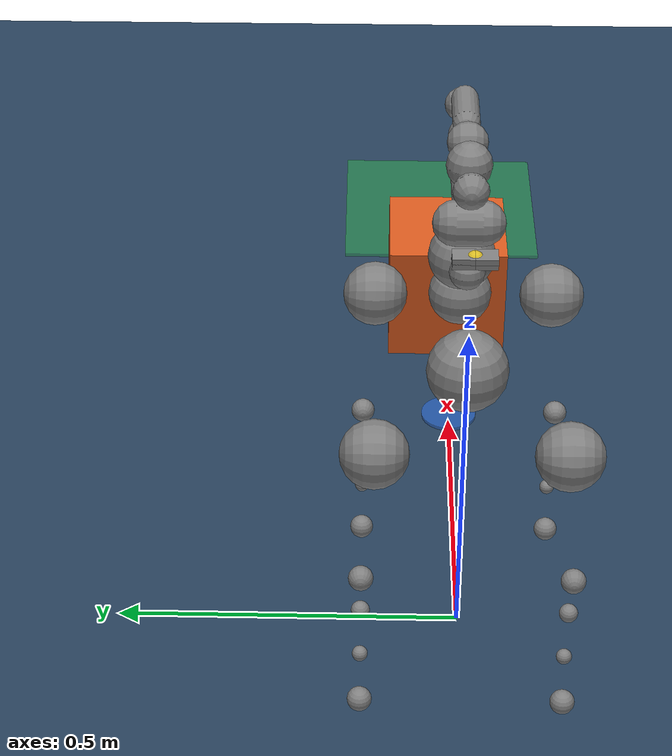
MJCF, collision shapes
<?xml version='1.0' encoding='utf-8'?>
<mujoco model="go2_z1 push scene">
  <include file="go2_z1.xml" />
  <option iterations="8" />
  <visual>
    <headlight diffuse="0.6 0.6 0.6" ambient="0.3 0.3 0.3" specular="0 0 0" />
    <rgba haze="0.15 0.25 0.35 1" />
    <global azimuth="-130" elevation="-20" />
  </visual>
  <asset>
    <texture type="skybox" builtin="gradient" rgb1="0.3 0.5 0.7" rgb2="0 0 0" width="512" height="3072" />
    <texture type="2d" name="groundplane" builtin="checker" mark="edge" rgb1="0.2 0.3 0.4" rgb2="0.1 0.2 0.3" markrgb="0.8 0.8 0.8" width="300" height="300" />
    <material name="groundplane" texture="groundplane" texuniform="true" texrepeat="5 5" reflectance="0.2" />
  </asset>
  <worldbody>
    <light pos="0 0 1.5" dir="0 0 -1" directional="true" />
    <geom name="floor" size="0 0 0.05" type="plane" material="groundplane" />
    <body name="push_box_body" pos="0.8 0.0 0.1">
      <freejoint name="push_box_joint" />
      <geom name="push_box" type="box" size="0.1 0.1 0.1" mass="2" friction="0.8 0.02 0.001" condim="3" rgba="0.85 0.35 0.12 1" />
      <site name="push_contact_site" type="sphere" pos="-0.105 0.0 0.0" size="0.012" rgba="1 0.85 0.1 0.8" group="1" />
      <site name="prepush_site" type="cylinder" pos="-0.3 0.0 -0.085" size="0.045 0.003" rgba="0.15 0.45 1 0.45" />
    </body>
    <site name="goal_site" type="box" pos="1.2 0.0 0.005" size="0.18 0.18 0.003" rgba="0.15 0.85 0.25 0.35" />
  </worldbody>
  <keyframe>
    <key name="push_home" qpos="0 0 0.27 1 0 0 0 0 0.9 -1.8 0 0.9 -1.8 0 0.9 -1.8 0 0.9 -1.8 0 0.785 -0.261 -0.523 0 0 0 0.8 0.0 0.1 1 0 0 0" ctrl="0 0.9 -1.8 0 0.9 -1.8 0 0.9 -1.8 0 0.9 -1.8 0 0.785 -0.261 -0.523 0 0 0" />
  </keyframe>
</mujoco>

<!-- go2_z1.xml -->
<mujoco model="go2_z1">
  <compiler angle="radian" meshdir="." autolimits="true" />
  <option cone="pyramidal" impratio="100" iterations="1" ls_iterations="5" integrator="implicitfast">
    </option>
  <default>
    <default class="go2">
      <geom friction="0.6" margin="0.001" condim="1" />
      <joint axis="0 1 0" damping="2" armature="0.01" />
      <general forcerange="-24 24" biastype="affine" gainprm="50 0 0" biasprm="0 -50 -0.5" />
      <default class="abduction">
        <joint axis="1 0 0" range="-1.0472 1.0472" />
        <general ctrlrange="-0.9472 0.9472" />
      </default>
      <default class="hip">
        <joint range="-1.5708 3.4907" />
        <general ctrlrange="-1.4 2.5" />
      </default>
      <default class="knee">
        <joint range="-2.7227 -0.83776" />
        <general ctrlrange="-2.6227 -0.84776" />
      </default>
      <default class="visual">
        <geom type="mesh" contype="0" conaffinity="0" group="2" />
      </default>
      <default class="go2foot">
        <site group="1" pos="-0.002 0 -0.213" />
        <geom rgba="0.231373 0.380392 0.705882 1" />
      </default>
      <default class="collision">
        <geom group="3" />
        <default class="foot">
          <geom size="0.0175" pos="-0.002 0 -0.213" priority="1" solimp="0.015 1 0.031" condim="6" friction="0.8 0.02 0.01" />
        </default>
      </default>
    </default>
    <default class="z1">
      <joint damping="1" frictionloss="1" />
      <general biastype="affine" gainprm="1000" biasprm="0 -1000 -100" forcerange="-30 30" />
      <default class="z1_visual">
        <geom type="mesh" group="2" contype="0" conaffinity="0" />
      </default>
      <default class="z1_collision">
        <geom type="capsule" group="3" mass="0" density="0" />
        <default class="z1_gripper_stator_collision">
          <geom pos="0.051 0 0" type="mesh" />
        </default>
        <default class="z1_gripper_stator_pad_collision_1">
          <geom type="box" size="0.014 0.015 0.004" pos="0.186 -0.015 -0.0125" />
        </default>
        <default class="z1_gripper_stator_pad_collision_2">
          <geom type="box" size="0.014 0.015 0.004" pos="0.186 0.015 -0.0125" />
        </default>
        <default class="z1_gripper_mover_collision">
          <geom type="mesh" />
        </default>
        <default class="z1_gripper_mover_pad_collision_1">
          <geom type="box" size="0.014 0.015 0.004" pos="0.086 -0.015 -0.0055" />
        </default>
        <default class="z1_gripper_mover_pad_collision_2">
          <geom type="box" size="0.014 0.015 0.004" pos="0.086 0.015 -0.0055" />
        </default>
      </default>
    </default>
  </default>
  <asset>
    <material name="metal" rgba=".9 .95 .95 1" />
    <material name="black" rgba="0 0 0 1" />
    <material name="white" rgba="1 1 1 1" />
    <material name="gray" rgba="0.671705 0.692426 0.774270 1" />
    <mesh file="../unitree_go2/assets/base_0.obj" />
    <mesh file="../unitree_go2/assets/base_1.obj" />
    <mesh file="../unitree_go2/assets/base_2.obj" />
    <mesh file="../unitree_go2/assets/base_3.obj" />
    <mesh file="../unitree_go2/assets/base_4.obj" />
    <mesh file="../unitree_go2/assets/hip_0.obj" />
    <mesh file="../unitree_go2/assets/hip_1.obj" />
    <mesh file="../unitree_go2/assets/thigh_0.obj" />
    <mesh file="../unitree_go2/assets/thigh_1.obj" />
    <mesh file="../unitree_go2/assets/thigh_mirror_0.obj" />
    <mesh file="../unitree_go2/assets/thigh_mirror_1.obj" />
    <mesh file="../unitree_go2/assets/calf_0.obj" />
    <mesh file="../unitree_go2/assets/calf_1.obj" />
    <mesh file="../unitree_go2/assets/calf_mirror_0.obj" />
    <mesh file="../unitree_go2/assets/calf_mirror_1.obj" />
    <mesh file="../unitree_go2/assets/foot.obj" />
    <mesh file="../unitree_z1/assets/z1_Link00.stl" />
    <mesh file="../unitree_z1/assets/z1_Link01.stl" />
    <mesh file="../unitree_z1/assets/z1_Link02.stl" />
    <mesh file="../unitree_z1/assets/z1_Link03.stl" />
    <mesh file="../unitree_z1/assets/z1_Link04.stl" />
    <mesh file="../unitree_z1/assets/z1_Link05.stl" />
    <mesh file="../unitree_z1/assets/z1_Link06.stl" />
    <mesh file="../unitree_z1/assets/z1_GripperStator.stl" />
    <mesh file="../unitree_z1/assets/z1_GripperStator_col_1.stl" />
    <mesh file="../unitree_z1/assets/z1_GripperStator_col_2.stl" />
    <mesh file="../unitree_z1/assets/z1_GripperStator_col_3.stl" />
    <mesh file="../unitree_z1/assets/z1_GripperStator_col_4.stl" />
    <mesh file="../unitree_z1/assets/z1_GripperStator_col_5.stl" />
    <mesh file="../unitree_z1/assets/z1_GripperStator_col_6.stl" />
    <mesh file="../unitree_z1/assets/z1_GripperMover.stl" />
    <mesh file="../unitree_z1/assets/z1_GripperMover_col_1.stl" />
    <mesh file="../unitree_z1/assets/z1_GripperMover_col_2.stl" />
    <mesh file="../unitree_z1/assets/z1_GripperMover_col_3.stl" />
    <mesh file="../unitree_z1/assets/z1_GripperMover_col_4.stl" />
    <mesh file="../unitree_z1/assets/z1_GripperMover_col_5.stl" />
  </asset>
  <worldbody>
    <body name="base" pos="0 0 0.445" childclass="go2">
      <camera name="track" pos="0.846 -1.465 0.916" xyaxes="0.866 0.500 0.000 -0.171 0.296 0.940" mode="trackcom" />
      <inertial pos="0.021112 0 -0.005366" quat="-0.000543471 0.713435 -0.00173769 0.700719" mass="6.921" diaginertia="0.107027 0.0980771 0.0244531" />
      <freejoint />
      <geom mesh="base_0" material="black" class="visual" />
      <geom mesh="base_1" material="black" class="visual" />
      <geom mesh="base_2" material="black" class="visual" />
      <geom mesh="base_3" material="white" class="visual" />
      <geom mesh="base_4" material="gray" class="visual" />
      <geom size="0.057 0.04675 0.057" class="collision" />
      <geom size="0.05 0.045" pos="0.285 0 0.01" class="collision" />
      <geom size="0.047" pos="0.293 0 -0.06" class="collision" />
      <site name="imu" pos="-0.02557 0 0.04232" />
      <body name="FL_hip" pos="0.1934 0.0465 0">
        <inertial pos="-0.0054 0.00194 -0.000105" quat="0.497014 0.499245 0.505462 0.498237" mass="0.678" diaginertia="0.00088403 0.000596003 0.000479967" />
        <joint name="FL_hip_joint" class="abduction" />
        <geom mesh="hip_0" material="metal" class="visual" />
        <geom mesh="hip_1" material="gray" class="visual" />
        <geom size="0.046 0.02" pos="0 0.08 0" quat="1 1 0 0" class="collision" />
        <body name="FL_thigh" pos="0 0.0955 0">
          <inertial pos="-0.00374 -0.0223 -0.0327" quat="0.829533 0.0847635 -0.0200632 0.551623" mass="1.152" diaginertia="0.00594973 0.00584149 0.000878787" />
          <joint name="FL_thigh_joint" class="hip" />
          <geom mesh="thigh_0" material="metal" class="visual" />
          <geom mesh="thigh_1" material="gray" class="visual" />
          <geom size="0.017 0.01225 0.017" pos="-0.015 0 -0.1955" quat="0.707107 0 0.707107 0" class="collision" />
          <body name="FL_calf" pos="0 0 -0.213">
            <inertial pos="0.00629595 -0.000622121 -0.141417" quat="0.710672 0.00154099 -0.00450087 0.703508" mass="0.241352" diaginertia="0.0014901 0.00146356 5.31397e-05" />
            <joint name="FL_calf_joint" class="knee" />
            <geom mesh="calf_0" material="gray" class="visual" />
            <geom mesh="calf_1" material="black" class="visual" />
            <geom size="0.012 0.06" pos="0.008 0 -0.06" quat="0.994493 0 -0.104807 0" class="collision" />
            <geom size="0.011 0.0325" pos="0.02 0 -0.148" quat="0.999688 0 0.0249974 0" class="collision" />
            <geom pos="0 0 -0.213" mesh="foot" class="visual" material="black" />
            <geom name="FL" class="foot" />
            <site name="FL_foot" class="go2foot" />
          </body>
        </body>
      </body>
      <body name="FR_hip" pos="0.1934 -0.0465 0">
        <inertial pos="-0.0054 -0.00194 -0.000105" quat="0.498237 0.505462 0.499245 0.497014" mass="0.678" diaginertia="0.00088403 0.000596003 0.000479967" />
        <joint name="FR_hip_joint" class="abduction" />
        <geom mesh="hip_0" material="metal" class="visual" quat="4.63268e-05 1 0 0" />
        <geom mesh="hip_1" material="gray" class="visual" quat="4.63268e-05 1 0 0" />
        <geom size="0.046 0.02" pos="0 -0.08 0" quat="0.707107 0.707107 0 0" class="collision" />
        <body name="FR_thigh" pos="0 -0.0955 0">
          <inertial pos="-0.00374 0.0223 -0.0327" quat="0.551623 -0.0200632 0.0847635 0.829533" mass="1.152" diaginertia="0.00594973 0.00584149 0.000878787" />
          <joint name="FR_thigh_joint" class="hip" />
          <geom mesh="thigh_mirror_0" material="metal" class="visual" />
          <geom mesh="thigh_mirror_1" material="gray" class="visual" />
          <geom size="0.017 0.01225 0.017" pos="-0.015 0 -0.1955" quat="0.707107 0 0.707107 0" class="collision" />
          <body name="FR_calf" pos="0 0 -0.213">
            <inertial pos="0.00629595 0.000622121 -0.141417" quat="0.703508 -0.00450087 0.00154099 0.710672" mass="0.241352" diaginertia="0.0014901 0.00146356 5.31397e-05" />
            <joint name="FR_calf_joint" class="knee" />
            <geom mesh="calf_mirror_0" material="gray" class="visual" />
            <geom mesh="calf_mirror_1" material="black" class="visual" />
            <geom size="0.013 0.06" pos="0.01 0 -0.06" quat="0.995004 0 -0.0998334 0" class="collision" />
            <geom size="0.011 0.0325" pos="0.02 0 -0.148" quat="0.999688 0 0.0249974 0" class="collision" />
            <geom pos="0 0 -0.213" mesh="foot" class="visual" material="black" />
            <geom name="FR" class="foot" />
            <site name="FR_foot" class="go2foot" />
          </body>
        </body>
      </body>
      <body name="RL_hip" pos="-0.1934 0.0465 0">
        <inertial pos="0.0054 0.00194 -0.000105" quat="0.505462 0.498237 0.497014 0.499245" mass="0.678" diaginertia="0.00088403 0.000596003 0.000479967" />
        <joint name="RL_hip_joint" class="abduction" />
        <geom mesh="hip_0" material="metal" class="visual" quat="4.63268e-05 0 1 0" />
        <geom mesh="hip_1" material="gray" class="visual" quat="4.63268e-05 0 1 0" />
        <geom size="0.046 0.02" pos="0 0.08 0" quat="0.707107 0.707107 0 0" class="collision" />
        <body name="RL_thigh" pos="0 0.0955 0">
          <inertial pos="-0.00374 -0.0223 -0.0327" quat="0.829533 0.0847635 -0.0200632 0.551623" mass="1.152" diaginertia="0.00594973 0.00584149 0.000878787" />
          <joint name="RL_thigh_joint" class="hip" />
          <geom mesh="thigh_0" material="metal" class="visual" />
          <geom mesh="thigh_1" material="gray" class="visual" />
          <geom size="0.017 0.01225 0.017" pos="-0.015 0 -0.1955" quat="0.707107 0 0.707107 0" class="collision" />
          <body name="RL_calf" pos="0 0 -0.213">
            <inertial pos="0.00629595 -0.000622121 -0.141417" quat="0.710672 0.00154099 -0.00450087 0.703508" mass="0.241352" diaginertia="0.0014901 0.00146356 5.31397e-05" />
            <joint name="RL_calf_joint" class="knee" />
            <geom mesh="calf_0" material="gray" class="visual" />
            <geom mesh="calf_1" material="black" class="visual" />
            <geom size="0.013 0.06" pos="0.01 0 -0.06" quat="0.995004 0 -0.0998334 0" class="collision" />
            <geom size="0.011 0.0325" pos="0.02 0 -0.148" quat="0.999688 0 0.0249974 0" class="collision" />
            <geom pos="0 0 -0.213" mesh="foot" class="visual" material="black" />
            <geom name="RL" class="foot" />
            <site name="RL_foot" class="go2foot" />
          </body>
        </body>
      </body>
      <body name="RR_hip" pos="-0.1934 -0.0465 0">
        <inertial pos="0.0054 -0.00194 -0.000105" quat="0.499245 0.497014 0.498237 0.505462" mass="0.678" diaginertia="0.00088403 0.000596003 0.000479967" />
        <joint name="RR_hip_joint" class="abduction" />
        <geom mesh="hip_0" material="metal" class="visual" quat="2.14617e-09 4.63268e-05 4.63268e-05 -1" />
        <geom mesh="hip_1" material="gray" class="visual" quat="2.14617e-09 4.63268e-05 4.63268e-05 -1" />
        <geom size="0.046 0.02" pos="0 -0.08 0" quat="0.707107 0.707107 0 0" class="collision" />
        <body name="RR_thigh" pos="0 -0.0955 0">
          <inertial pos="-0.00374 0.0223 -0.0327" quat="0.551623 -0.0200632 0.0847635 0.829533" mass="1.152" diaginertia="0.00594973 0.00584149 0.000878787" />
          <joint name="RR_thigh_joint" class="hip" />
          <geom mesh="thigh_mirror_0" material="metal" class="visual" />
          <geom mesh="thigh_mirror_1" material="gray" class="visual" />
          <geom size="0.017 0.01225 0.017" pos="-0.015 0 -0.1955" quat="0.707107 0 0.707107 0" class="collision" />
          <body name="RR_calf" pos="0 0 -0.213">
            <inertial pos="0.00629595 0.000622121 -0.141417" quat="0.703508 -0.00450087 0.00154099 0.710672" mass="0.241352" diaginertia="0.0014901 0.00146356 5.31397e-05" />
            <joint name="RR_calf_joint" class="knee" />
            <geom mesh="calf_mirror_0" material="gray" class="visual" />
            <geom mesh="calf_mirror_1" material="black" class="visual" />
            <geom size="0.013 0.06" pos="0.01 0 -0.06" quat="0.995004 0 -0.0998334 0" class="collision" />
            <geom size="0.011 0.0325" pos="0.02 0 -0.148" quat="0.999688 0 0.0249974 0" class="collision" />
            <geom pos="0 0 -0.213" mesh="foot" class="visual" material="black" />
            <geom name="RR" class="foot" />
            <site name="RR_foot" class="go2foot" />
          </body>
        </body>
      </body>
      <body name="link00" childclass="z1" pos="0.12 0 0.058" quat="0 0 0 1">
        <inertial pos="-0.00334984 -0.00013615 0.0249584" quat="-0.00692194 0.682592 0.00133293 0.730766" mass="0.472475" diaginertia="0.000531375 0.000415207 0.000378658" />
        <geom class="z1_visual" mesh="z1_Link00" />
        <geom size="0.0255 1e-06" pos="0 0 0.0255" class="z1_collision" />
        <body name="link01" pos="0 0 0.0585">
          <inertial pos="2.47e-06 -0.00025198 0.0231717" quat="0.708578 0.705633 0.000281462 -0.000355927" mass="0.673326" diaginertia="0.00128328 0.000839362 0.000719308" />
          <joint name="joint1" axis="0 0 1" range="-2.61799 2.61799" />
          <geom class="z1_visual" mesh="z1_Link01" />
          <body name="link02" pos="0 0 0.045">
            <inertial pos="-0.110126 0.00240029 0.00158266" quat="0.00748058 0.707092 -0.0114473 0.70699" mass="1.19132" diaginertia="0.0246612 0.0243113 0.00100468" />
            <joint name="joint2" axis="0 1 0" range="0 2.96706" damping="2" />
            <geom class="z1_visual" mesh="z1_Link02" />
            <geom size="0.0325 0.0185" quat="1 1 0 0" class="z1_collision" />
            <geom size="0.0225 0.095" pos="-0.1625 0 0" quat="1 0 1 0" class="z1_collision" />
            <geom size="0.0255 1e-06" pos="-0.35 0 0" quat="1 1 0 0" class="z1_collision" />
            <body name="link03" pos="-0.35 0 0">
              <inertial pos="0.106092 -0.00541815 0.0347638" quat="0.540557 0.443575 0.426319 0.573839" mass="0.839409" diaginertia="0.00954365 0.00938711 0.000558432" />
              <joint name="joint3" axis="0 1 0" range="-2.87979 0" />
              <geom class="z1_visual" mesh="z1_Link03" />
              <geom size="0.02 0.038" pos="0.128 0 0.055" quat="1 0 1 0" class="z1_collision" />
              <geom size="0.0295 1e-06" pos="0.2205 0 0.055" quat="0.5 -0.5 0.5 0.5" class="z1_collision" />
              <body name="link04" pos="0.218 0 0.057">
                <inertial pos="0.0436668 0.00364738 -0.00170192" quat="0.0390835 0.726445 -0.0526787 0.684087" mass="0.564046" diaginertia="0.000981656 0.00094053 0.000302655" />
                <joint name="joint4" axis="0 1 0" range="-1.51844 1.51844" />
                <geom class="z1_visual" mesh="z1_Link04" />
                <geom size="0.0325 0.001" pos="0.072 0 0" class="z1_collision" />
                <body name="link05" pos="0.07 0 0">
                  <inertial pos="0.0312153 0 0.00646316" quat="0.462205 0.535209 0.53785 0.45895" mass="0.389385" diaginertia="0.000558961 0.000547317 0.000167332" />
                  <joint name="joint5" axis="0 0 1" range="-1.3439 1.3439" />
                  <geom class="z1_visual" mesh="z1_Link05" />
                  <body name="link06" pos="0.0492 0 0">
                    <inertial pos="0.0241569 -0.00017355 -0.00143876" quat="0.998779 0.0457735 -0.00663717 0.0173548" mass="0.288758" diaginertia="0.00018333 0.000147464 0.000146786" />
                    <joint name="joint6" axis="1 0 0" range="-2.79253 2.79253" />
                    <geom class="z1_visual" mesh="z1_Link06" />
                    <geom size="0.0255 1e-06" pos="0.0255 0 0" quat="1 0 1 0" class="z1_collision" />
                    <geom pos="0.051 0 0" type="mesh" mesh="z1_GripperStator" class="z1_visual" />
                    <geom class="z1_gripper_stator_collision" mesh="z1_GripperStator_col_1" contype="0" conaffinity="0" />
                    <geom class="z1_gripper_stator_collision" mesh="z1_GripperStator_col_2" contype="0" conaffinity="0" />
                    <geom class="z1_gripper_stator_collision" mesh="z1_GripperStator_col_3" contype="0" conaffinity="0" />
                    <geom class="z1_gripper_stator_collision" mesh="z1_GripperStator_col_4" contype="0" conaffinity="0" />
                    <geom class="z1_gripper_stator_collision" mesh="z1_GripperStator_col_5" contype="0" conaffinity="0" />
                    <geom class="z1_gripper_stator_collision" mesh="z1_GripperStator_col_6" contype="0" conaffinity="0" />
                    <geom class="z1_gripper_stator_pad_collision_1" name="push_pad_stator_left" />
                    <geom class="z1_gripper_stator_pad_collision_2" name="push_pad_stator_right" />
                    <body name="gripperMover" pos="0.1 0 0">
                      <inertial pos="0.0132063 0.00476708 0.00380534" quat="0.0631093 0.669067 -0.0615783 0.737953" mass="0.276213" diaginertia="0.000359044 0.000270888 0.000172378" />
                      <joint name="jointGripper" axis="0 1 0" range="-1.51844 0" />
                      <geom type="mesh" mesh="z1_GripperMover" class="z1_visual" />
                      <geom class="z1_gripper_mover_collision" mesh="z1_GripperMover_col_1" contype="0" conaffinity="0" />
                      <geom class="z1_gripper_mover_collision" mesh="z1_GripperMover_col_2" contype="0" conaffinity="0" />
                      <geom class="z1_gripper_mover_collision" mesh="z1_GripperMover_col_3" contype="0" conaffinity="0" />
                      <geom class="z1_gripper_mover_collision" mesh="z1_GripperMover_col_4" contype="0" conaffinity="0" />
                      <geom class="z1_gripper_mover_collision" mesh="z1_GripperMover_col_5" contype="0" conaffinity="0" />
                      <geom class="z1_gripper_mover_pad_collision_1" name="push_pad_mover_left" />
                      <geom class="z1_gripper_mover_pad_collision_2" name="push_pad_mover_right" />
                    </body>
                    <site name="z1_ee" pos="0.186 0.0 -0.009" size="0.012" rgba="1 0.85 0.1 0.8" group="1" />
                  </body>
                </body>
              </body>
            </body>
          </body>
        </body>
      </body>
    </body>
  </worldbody>
  <actuator>
    <general class="abduction" name="FL_hip" joint="FL_hip_joint" />
    <general class="hip" name="FL_thigh" joint="FL_thigh_joint" />
    <general class="knee" name="FL_calf" joint="FL_calf_joint" />
    <general class="abduction" name="FR_hip" joint="FR_hip_joint" />
    <general class="hip" name="FR_thigh" joint="FR_thigh_joint" />
    <general class="knee" name="FR_calf" joint="FR_calf_joint" />
    <general class="abduction" name="RL_hip" joint="RL_hip_joint" />
    <general class="hip" name="RL_thigh" joint="RL_thigh_joint" />
    <general class="knee" name="RL_calf" joint="RL_calf_joint" />
    <general class="abduction" name="RR_hip" joint="RR_hip_joint" />
    <general class="hip" name="RR_thigh" joint="RR_thigh_joint" />
    <general class="knee" name="RR_calf" joint="RR_calf_joint" />
    <general class="z1" name="motor1" joint="joint1" ctrlrange="-2.61799 2.61799" />
    <general class="z1" name="motor2" joint="joint2" ctrlrange="0 2.96706" forcerange="-60 60" gainprm="1500" biasprm="0 -1500 -150" />
    <general class="z1" name="motor3" joint="joint3" ctrlrange="-2.87979 0" />
    <general class="z1" name="motor4" joint="joint4" ctrlrange="-1.51844 1.51844" />
    <general class="z1" name="motor5" joint="joint5" ctrlrange="-1.3439 1.3439" />
    <general class="z1" name="motor6" joint="joint6" ctrlrange="-2.79253 2.79253" />
    <general class="z1" name="motorGripper" joint="jointGripper" ctrlrange="-1.51844 0" />
  </actuator>
  <sensor>
    <jointpos joint="FL_hip_joint" name="abduction_front_left_pos" />
    <jointpos joint="FL_thigh_joint" name="hip_front_left_pos" />
    <jointpos joint="FL_calf_joint" name="knee_front_left_pos" />
    <jointpos joint="RL_hip_joint" name="abduction_hind_left_pos" />
    <jointpos joint="RL_thigh_joint" name="hip_hind_left_pos" />
    <jointpos joint="RL_calf_joint" name="knee_hind_left_pos" />
    <jointpos joint="FR_hip_joint" name="abduction_front_right_pos" />
    <jointpos joint="FR_thigh_joint" name="hip_front_right_pos" />
    <jointpos joint="FR_calf_joint" name="knee_front_right_pos" />
    <jointpos joint="RR_hip_joint" name="abduction_hind_right_pos" />
    <jointpos joint="RR_thigh_joint" name="hip_hind_right_pos" />
    <jointpos joint="RR_calf_joint" name="knee_hind_right_pos" />
    <jointvel joint="FL_hip_joint" name="abduction_front_left_vel" />
    <jointvel joint="FL_thigh_joint" name="hip_front_left_vel" />
    <jointvel joint="FL_calf_joint" name="knee_front_left_vel" />
    <jointvel joint="RL_hip_joint" name="abduction_hind_left_vel" />
    <jointvel joint="RL_thigh_joint" name="hip_hind_left_vel" />
    <jointvel joint="RL_calf_joint" name="knee_hind_left_vel" />
    <jointvel joint="FR_hip_joint" name="abduction_front_right_vel" />
    <jointvel joint="FR_thigh_joint" name="hip_front_right_vel" />
    <jointvel joint="FR_calf_joint" name="knee_front_right_vel" />
    <jointvel joint="RR_hip_joint" name="abduction_hind_right_vel" />
    <jointvel joint="RR_thigh_joint" name="hip_hind_right_vel" />
    <jointvel joint="RR_calf_joint" name="knee_hind_right_vel" />
    <gyro site="imu" name="gyro" />
    <accelerometer site="imu" name="accelerometer" />
    <framequat objtype="site" objname="imu" name="orientation" />
    <framepos objtype="site" objname="imu" name="global_position" />
    <framelinvel objtype="site" objname="imu" name="global_linvel" />
    <frameangvel objtype="site" objname="imu" name="global_angvel" />
    <framelinvel name="FL_foot_linvel" objtype="site" objname="FL_foot" />
    <framelinvel name="FR_foot_linvel" objtype="site" objname="FR_foot" />
    <framelinvel name="RL_foot_linvel" objtype="site" objname="RL_foot" />
    <framelinvel name="RR_foot_linvel" objtype="site" objname="RR_foot" />
  </sensor>
  <keyframe>
    <key name="home" qpos="0 0 0.27 1 0 0 0 0 0.9 -1.8 0 0.9 -1.8 0 0.9 -1.8 0 0.9 -1.8 0 0.785 -0.261 -0.523 0 0 0" ctrl="0 0.9 -1.8 0 0.9 -1.8 0 0.9 -1.8 0 0.9 -1.8 0 0.785 -0.261 -0.523 0 0 0" />
  </keyframe>
</mujoco>
